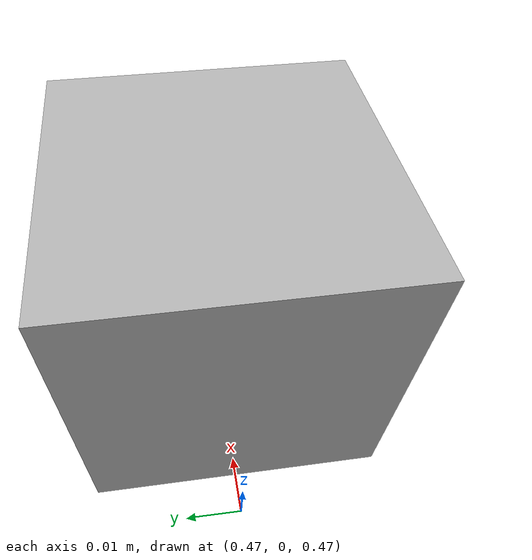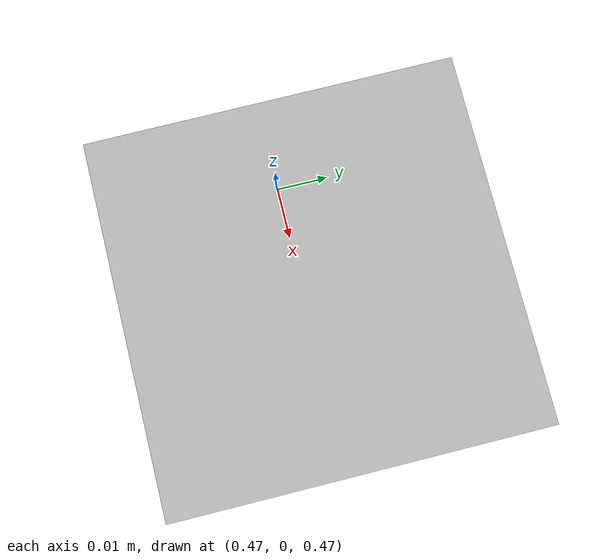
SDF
<?xml version="1.0" ?>
<sdf version="1.5">
  <world name="default">
    <!-- A global light source -->
    <include>
      <uri>model://sun</uri>
    </include>
    <!-- A ground plane -->
    <include>
      <uri>model://ground_plane</uri>
    </include>

    <model name="box_model">
      <allow_auto_disable>0</allow_auto_disable>
      <pose>0.50000 0.000000 0.500000 0.000000 -0.000000 0.000000</pose>
      <link name="box_body">
        <pose>0.000000 0.000000 0.000000 0.000000 -0.000000 0.000000</pose>
        <inertial>
          <pose>0.000000 0.000000 -0.500000 0.000000 -0.000000 0.000000</pose>
          <mass>0.050000</mass>
        </inertial>
        <collision name="box_geom">
          <pose>0.000000 0.000000 0.000000 0.000000 -0.000000 0.000000</pose>
          <geometry>
            <box>
              <size>0.050000 0.050000 0.050000</size>
            </box>
          </geometry>
          <surface>
            <friction>
              <ode>
                <mu>0.998500</mu>
                <mu2>0.998500</mu2>
                <fdir1>0.000000 0.000000 0.000000</fdir1>
                <slip1>0.000000</slip1>
                <slip2>0.000000</slip2>
              </ode>
            </friction>
            <bounce>
              <restitution_coefficient>0.000000</restitution_coefficient>
              <threshold>100000.000000</threshold>
            </bounce>
            <contact>
              <ode>
                <soft_cfm>0.000000</soft_cfm>
                <soft_erp>0.200000</soft_erp>
                <kp>100000.000000</kp>
                <kd>1.000000</kd>
                <max_vel>100.000000</max_vel>
                <min_depth>0.001000</min_depth>
              </ode>
            </contact>
          </surface>
          <laser_retro>0.000000</laser_retro>
        </collision>
        <visual name="box_geom_visual">
          <pose>0.000000 0.000000 0.000000 0.000000 -0.000000 0.000000</pose>
          <geometry>
            <box>
              <size>0.050000 0.050000 0.050000</size>
            </box>
          </geometry>
          <material>
            <script>Gazebo/Rocky</script>
          </material>
          <cast_shadows>1</cast_shadows>
          <laser_retro>0.000000</laser_retro>
          <transparency>0.000000</transparency>
        </visual>
        <self_collide>0</self_collide>
        <kinematic>0</kinematic>
      </link>
      <static>0</static>
    </model>

  </world>
</sdf>
